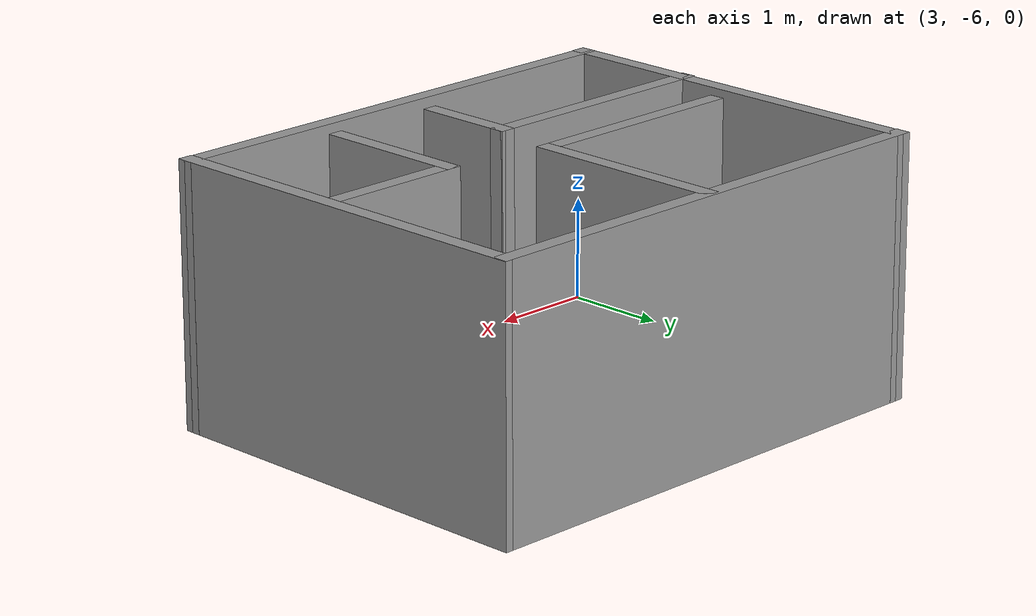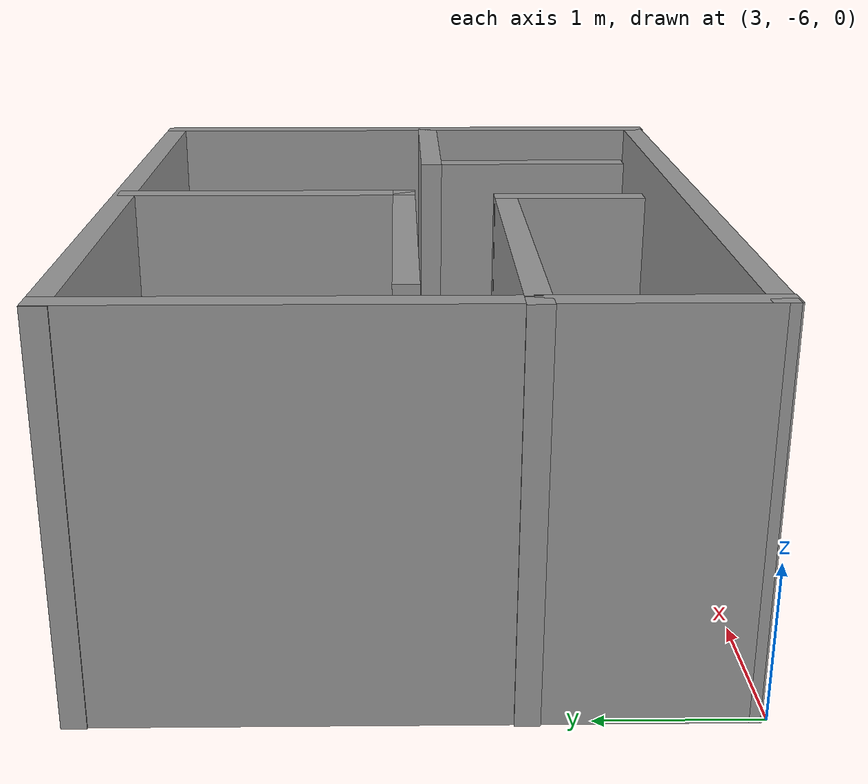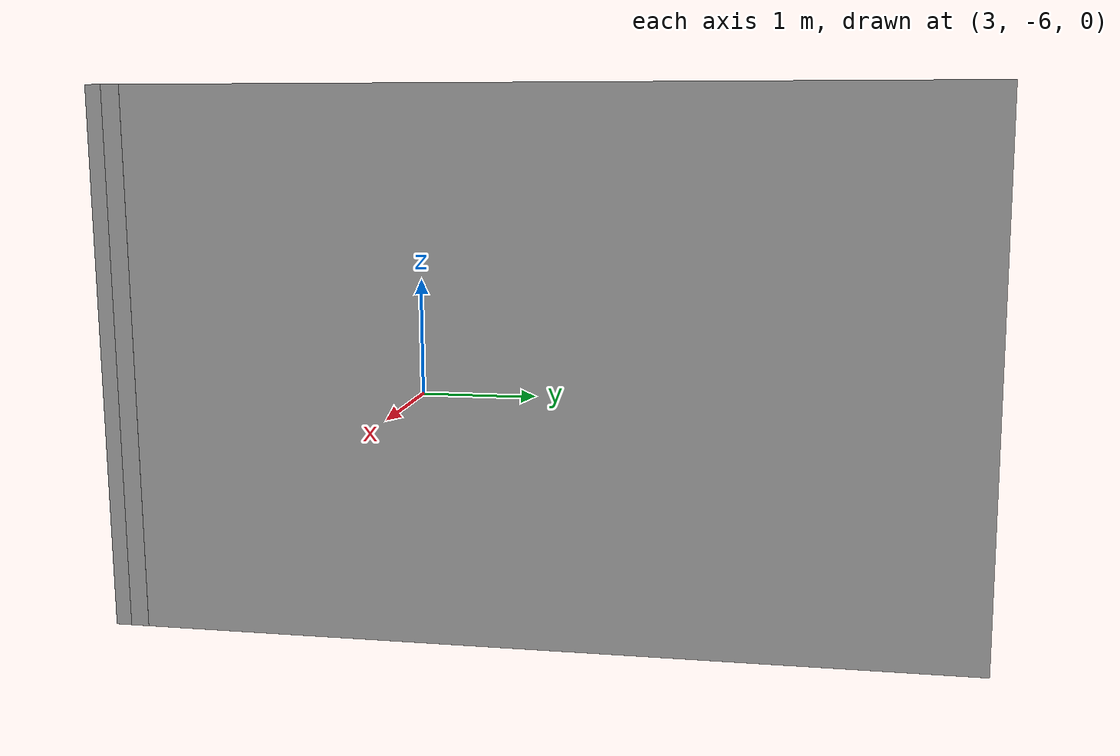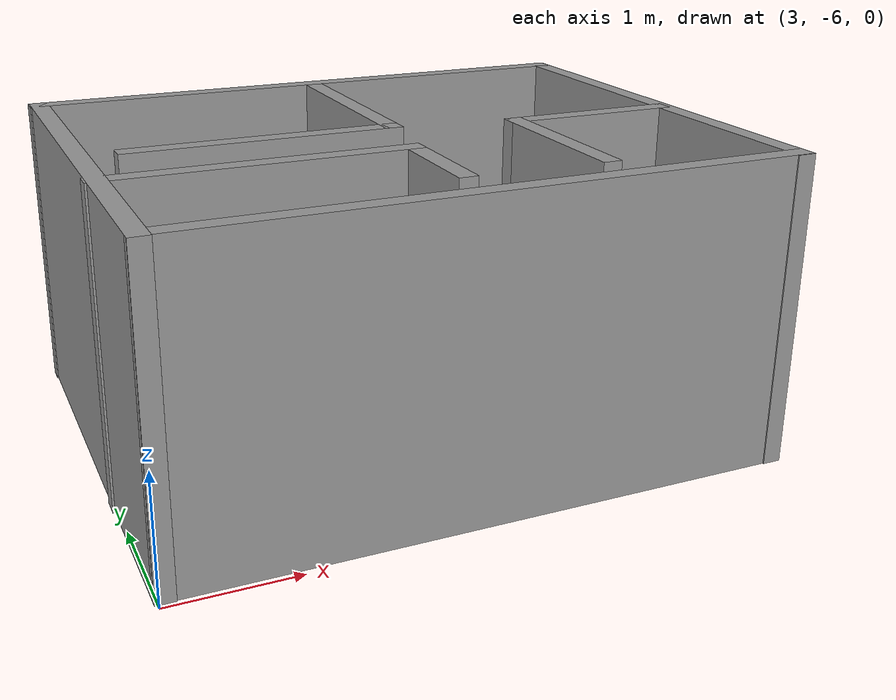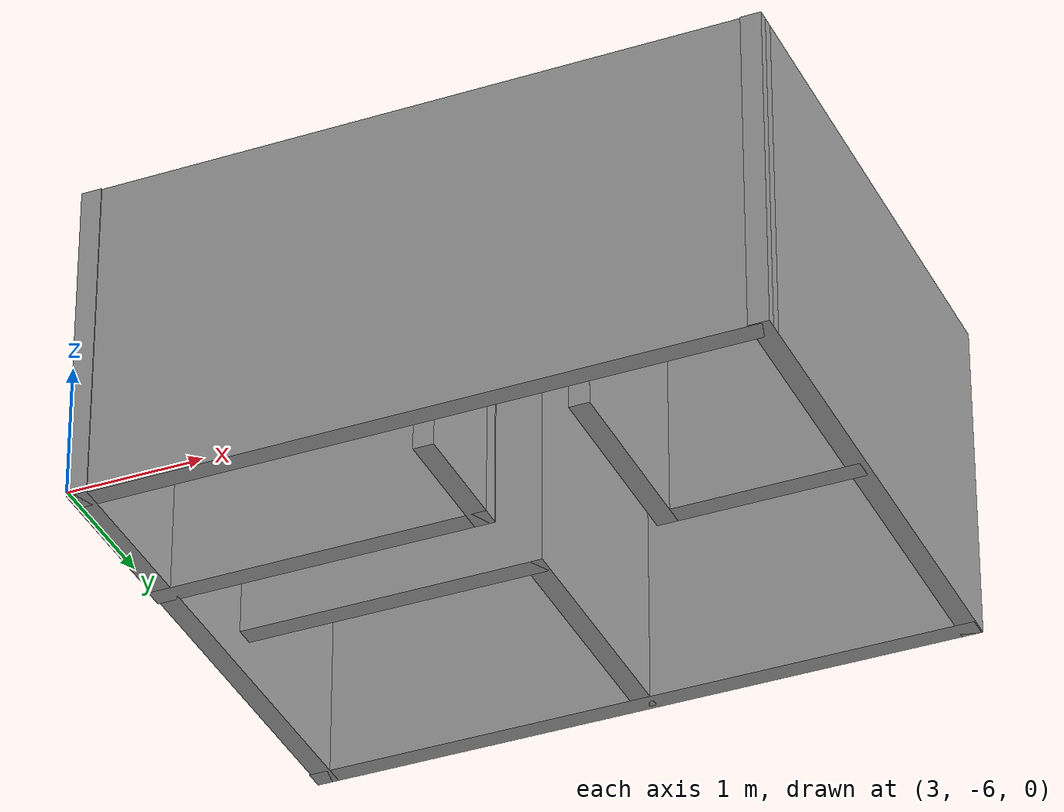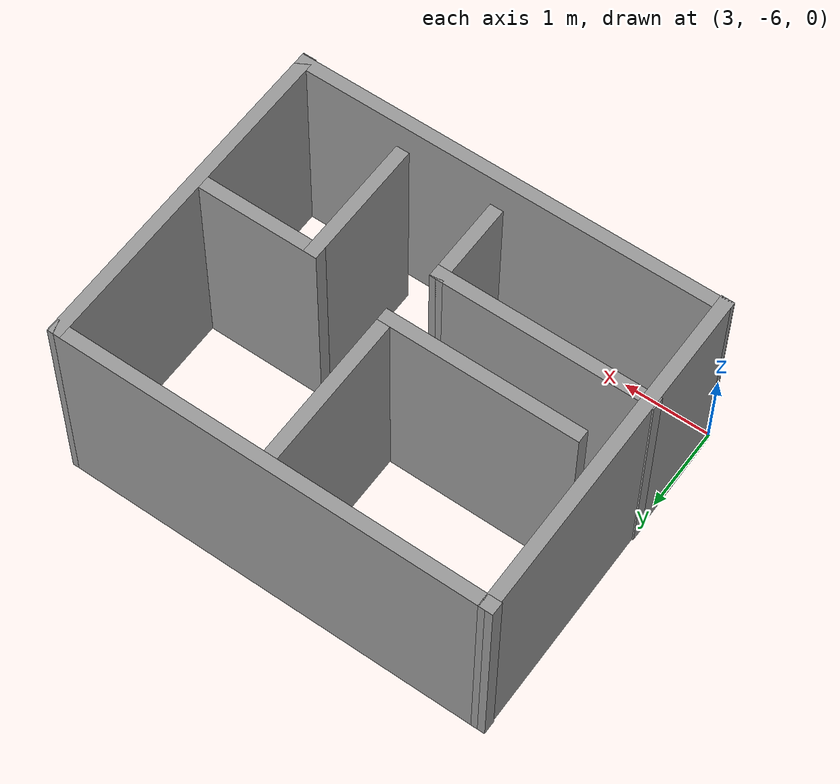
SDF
<?xml version='1.0'?>
<sdf version='1.7'>
  <model name='bedrooms'>
    <pose>3.9876 -2.9826 0 0 -0 0</pose>
    <link name='Wall_0'>
      <collision name='Wall_0_Collision'>
        <geometry>
          <box>
            <size>5 0.15 2.5</size>
          </box>
        </geometry>
        <pose>0 0 1.25 0 -0 0</pose>
      </collision>
      <visual name='Wall_0_Visual'>
        <pose>0 0 1.25 0 -0 0</pose>
        <geometry>
          <box>
            <size>5 0.15 2.5</size>
          </box>
        </geometry>
        <material>
          <script>
            <uri>file://media/materials/scripts/gazebo.material</uri>
            <name>Gazebo/Grey</name>
          </script>
          <ambient>1 1 1 1</ambient>
        </material>
        <meta>
          <layer>0</layer>
        </meta>
      </visual>
      <pose>1.4674 0.912598 0 0 -0 0</pose>
    </link>
    <link name='Wall_1'>
      <collision name='Wall_1_Collision'>
        <geometry>
          <box>
            <size>3.97001 0.15 2.5</size>
          </box>
        </geometry>
        <pose>0 0 1.25 0 -0 0</pose>
      </collision>
      <visual name='Wall_1_Visual'>
        <pose>0 0 1.25 0 -0 0</pose>
        <geometry>
          <box>
            <size>3.97001 0.15 2.5</size>
          </box>
        </geometry>
        <material>
          <script>
            <uri>file://media/materials/scripts/gazebo.material</uri>
            <name>Gazebo/Grey</name>
          </script>
          <ambient>1 1 1 1</ambient>
        </material>
        <meta>
          <layer>0</layer>
        </meta>
      </visual>
      <pose>3.9074 -0.997402 0 0 -0 -1.56818</pose>
    </link>
    <link name='Wall_10'>
      <collision name='Wall_10_Collision'>
        <geometry>
          <box>
            <size>1 0.15 2.5</size>
          </box>
        </geometry>
        <pose>0 0 1.25 0 -0 0</pose>
      </collision>
      <visual name='Wall_10_Visual'>
        <pose>0 0 1.25 0 -0 0</pose>
        <geometry>
          <box>
            <size>1 0.15 2.5</size>
          </box>
        </geometry>
        <material>
          <script>
            <uri>file://media/materials/scripts/gazebo.material</uri>
            <name>Gazebo/Grey</name>
          </script>
          <ambient>1 1 1 1</ambient>
        </material>
        <meta>
          <layer>0</layer>
        </meta>
      </visual>
      <pose>1.3924 -2.0724 0 0 -0 -1.5708</pose>
    </link>
    <link name='Wall_12'>
      <collision name='Wall_12_Collision'>
        <geometry>
          <box>
            <size>1.5 0.15 2.5</size>
          </box>
        </geometry>
        <pose>0 0 1.25 0 -0 0</pose>
      </collision>
      <visual name='Wall_12_Visual'>
        <pose>0 0 1.25 0 -0 0</pose>
        <geometry>
          <box>
            <size>1.5 0.15 2.5</size>
          </box>
        </geometry>
        <material>
          <script>
            <uri>file://media/materials/scripts/gazebo.material</uri>
            <name>Gazebo/Grey</name>
          </script>
          <ambient>1 1 1 1</ambient>
        </material>
        <meta>
          <layer>0</layer>
        </meta>
      </visual>
      <pose>3.1874 -1.1774 0 0 -0 3.14159</pose>
    </link>
    <link name='Wall_13'>
      <collision name='Wall_13_Collision'>
        <geometry>
          <box>
            <size>1.5 0.15 2.5</size>
          </box>
        </geometry>
        <pose>0 0 1.25 0 -0 0</pose>
      </collision>
      <visual name='Wall_13_Visual'>
        <pose>0 0 1.25 0 -0 0</pose>
        <geometry>
          <box>
            <size>1.5 0.15 2.5</size>
          </box>
        </geometry>
        <material>
          <script>
            <uri>file://media/materials/scripts/gazebo.material</uri>
            <name>Gazebo/Grey</name>
          </script>
          <ambient>1 1 1 1</ambient>
        </material>
        <meta>
          <layer>0</layer>
        </meta>
      </visual>
      <pose>2.5124 -1.8524 0 0 -0 -1.5708</pose>
    </link>
    <link name='Wall_2'>
      <collision name='Wall_2_Collision'>
        <geometry>
          <box>
            <size>5 0.15 2.5</size>
          </box>
        </geometry>
        <pose>0 0 1.25 0 -0 0</pose>
      </collision>
      <visual name='Wall_2_Visual'>
        <pose>0 0 1.25 0 -0 0</pose>
        <geometry>
          <box>
            <size>5 0.15 2.5</size>
          </box>
        </geometry>
        <material>
          <script>
            <uri>file://media/materials/scripts/gazebo.material</uri>
            <name>Gazebo/Grey</name>
          </script>
          <ambient>1 1 1 1</ambient>
        </material>
        <meta>
          <layer>0</layer>
        </meta>
      </visual>
      <pose>1.4874 -2.8974 0 0 -0 3.14159</pose>
    </link>
    <link name='Wall_3'>
      <collision name='Wall_3_Collision'>
        <geometry>
          <box>
            <size>3.97001 0.15 2.5</size>
          </box>
        </geometry>
        <pose>0 0 1.25 0 -0 0</pose>
      </collision>
      <visual name='Wall_3_Visual'>
        <pose>0 0 1.25 0 -0 0</pose>
        <geometry>
          <box>
            <size>3.97001 0.15 2.5</size>
          </box>
        </geometry>
        <material>
          <script>
            <uri>file://media/materials/scripts/gazebo.material</uri>
            <name>Gazebo/Grey</name>
          </script>
          <ambient>1 1 1 1</ambient>
        </material>
        <meta>
          <layer>0</layer>
        </meta>
      </visual>
      <pose>-0.942598 -0.997402 0 0 -0 1.57341</pose>
    </link>
    <link name='Wall_5'>
      <collision name='Wall_5_Collision'>
        <geometry>
          <box>
            <size>2 0.15 2.5</size>
          </box>
        </geometry>
        <pose>0 0 1.25 0 -0 0</pose>
      </collision>
      <visual name='Wall_5_Visual'>
        <pose>0 0 1.25 0 -0 0</pose>
        <geometry>
          <box>
            <size>2 0.15 2.5</size>
          </box>
        </geometry>
        <material>
          <script>
            <uri>file://media/materials/scripts/gazebo.material</uri>
            <name>Gazebo/Grey</name>
          </script>
          <ambient>1 1 1 1</ambient>
        </material>
        <meta>
          <layer>0</layer>
        </meta>
      </visual>
      <pose>1.5024 -0.042402 0 0 -0 1.5708</pose>
    </link>
    <link name='Wall_7'>
      <collision name='Wall_7_Collision'>
        <geometry>
          <box>
            <size>2.25 0.15 2.5</size>
          </box>
        </geometry>
        <pose>0 0 1.25 0 -0 0</pose>
      </collision>
      <visual name='Wall_7_Visual'>
        <pose>0 0 1.25 0 -0 0</pose>
        <geometry>
          <box>
            <size>2.25 0.15 2.5</size>
          </box>
        </geometry>
        <material>
          <script>
            <uri>file://media/materials/scripts/gazebo.material</uri>
            <name>Gazebo/Grey</name>
          </script>
          <ambient>1 1 1 1</ambient>
        </material>
        <meta>
          <layer>0</layer>
        </meta>
      </visual>
      <pose>0.452402 -0.967402 0 0 -0 3.14159</pose>
    </link>
    <link name='Wall_9'>
      <collision name='Wall_9_Collision'>
        <geometry>
          <box>
            <size>2.5 0.15 2.5</size>
          </box>
        </geometry>
        <pose>0 0 1.25 0 -0 0</pose>
      </collision>
      <visual name='Wall_9_Visual'>
        <pose>0 0 1.25 0 -0 0</pose>
        <geometry>
          <box>
            <size>2.5 0.15 2.5</size>
          </box>
        </geometry>
        <material>
          <script>
            <uri>file://media/materials/scripts/gazebo.material</uri>
            <name>Gazebo/Grey</name>
          </script>
          <ambient>1 1 1 1</ambient>
        </material>
        <meta>
          <layer>0</layer>
        </meta>
      </visual>
      <pose>0.217402 -1.6474 0 0 -0 0</pose>
    </link>
    <static>1</static>
  </model>
</sdf>
